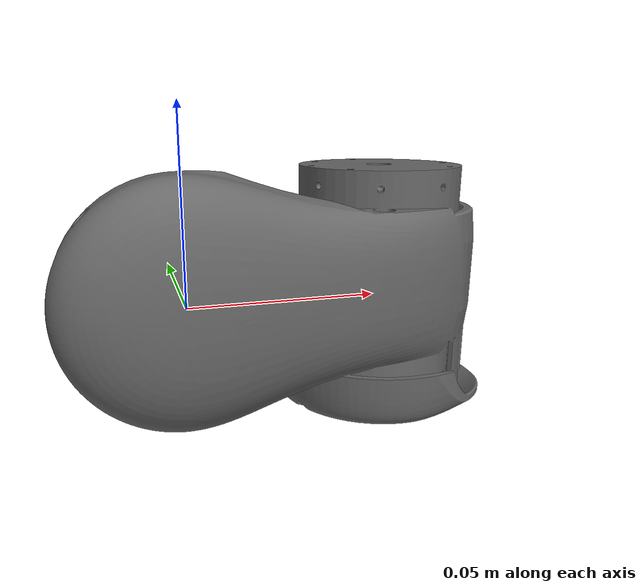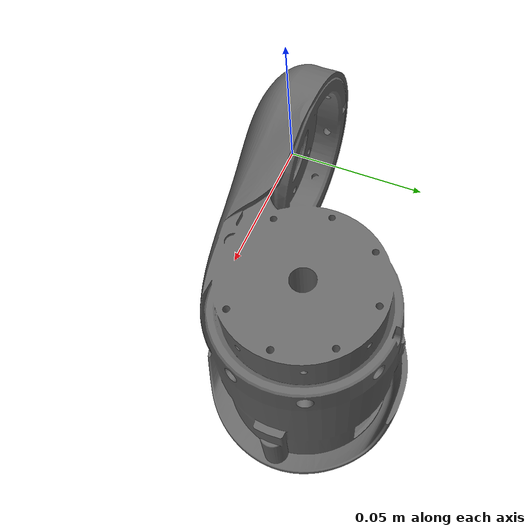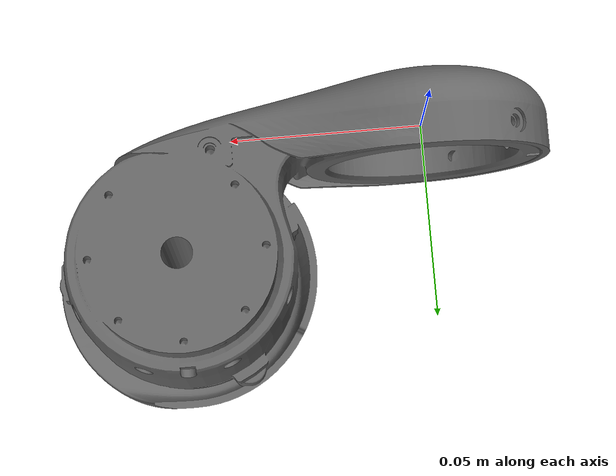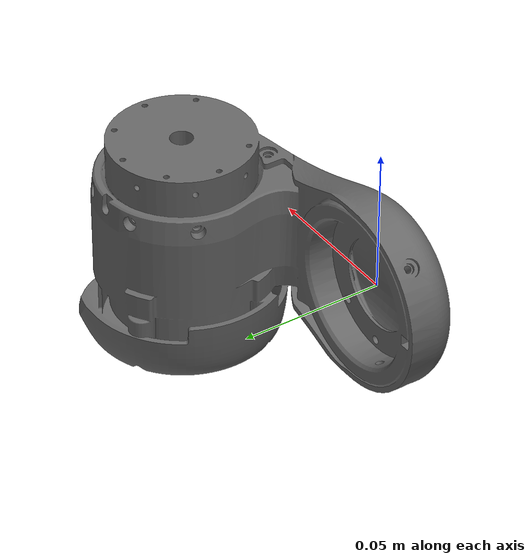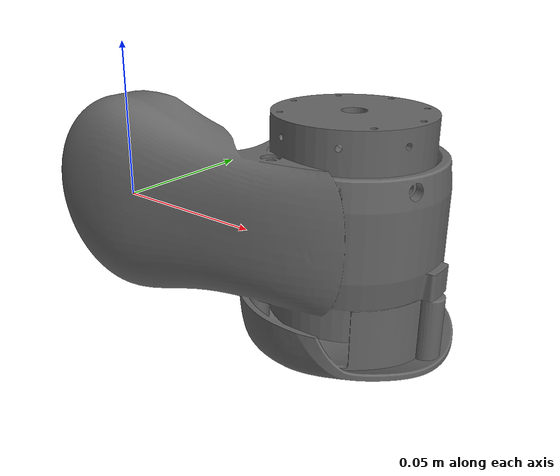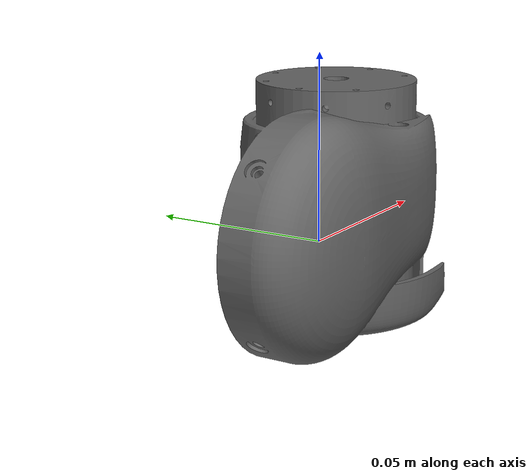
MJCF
<mujoco model="R_arm_l6">
  <default>
    <default class="visual">
      <geom group="2" type="mesh" contype="0" conaffinity="0"/>
    </default>
    <default class="collision">
      <geom group="3" type="mesh"/>
    </default>
  </default>
  <asset>
    <material name="material_0" specular="0.4000000000000001" shininess="0.001" rgba="0.40000000 0.40000000 0.40000000 1.0"/>
    <mesh file="R_arm_l6.obj"/>
  </asset>
  <worldbody>
    <body name="R_arm_l6">
      <geom material="material_0" mesh="R_arm_l6" class="visual"/>
    </body>
  </worldbody>
</mujoco>
